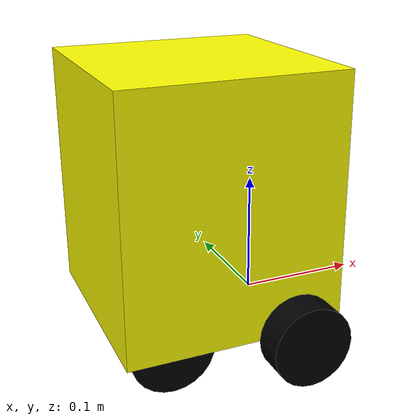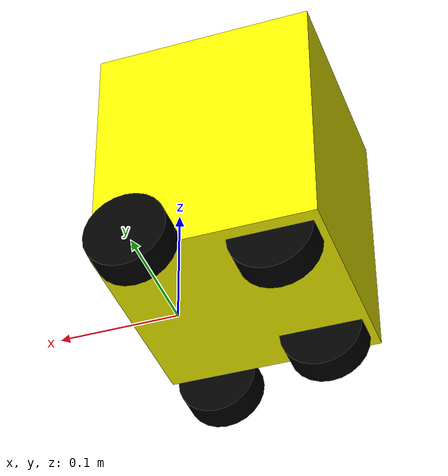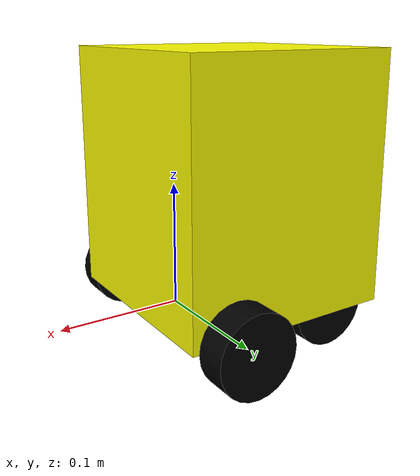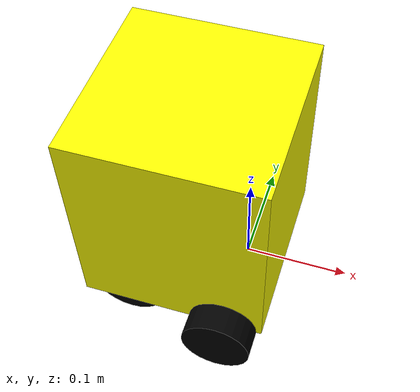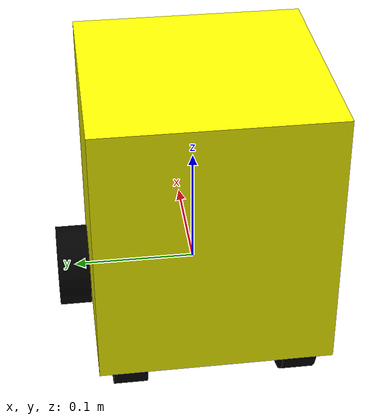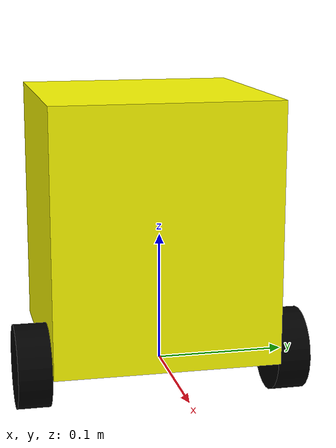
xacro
<?xml version="1.0"?>
<robot xmlns:xacro="http://www.ros.org/wiki/xacro" >

    <xacro:include filename="inertial_macros.xacro"/>

    <material name="white">
        <color rgba="1 1 1 1" />
    </material>

    <material name="orange">
        <color rgba="1 0.3 0.1 1"/>
    </material>

    <material name="blue">
        <color rgba="0.2 0.2 1 1"/>
    </material>

    <material name="black">
        <color rgba="0 0 0 1"/>
    </material>

    <material name="red">
        <color rgba="1 0 0 1"/>
    </material>

    <material name="yellow">
        <color rgba="1 1 0 1"/>
    </material>

    <!-- BASE LINK -->

    <link name="base_link">

    </link>

    <!-- CHASSIS LINK -->

    <joint name="chassis_joint" type="fixed">
        <parent link="base_link"/>
        <child link="chassis"/>
        <origin xyz="-0.14 0 0"/>
    </joint>

    <link name="chassis">
        <visual>
            <origin xyz="0.089 0 0.103"/>
            <geometry>
                <box size="0.178 0.178 0.206"/>
            </geometry>
            <material name="yellow"/>
        </visual>
        <collision>
            <origin xyz="0.089 0 0.103"/>
            <geometry>
                <box size="0.178 0.178 0.206"/>
            </geometry>
        </collision>
        <xacro:inertial_box mass="0.8" x="0.178" y="0.178" z="0.206">
            <origin xyz="0.089 0 0.103" rpy="0 0 0"/>
        </xacro:inertial_box>
    </link>

    <gazebo reference="chassis">
        <material>Gazebo/Yellow</material>
    </gazebo>

    <!-- LEFT WHEEL LINK -->

    <joint name="left_wheel_joint" type="continuous">
        <parent link="base_link"/>
        <child link="left_wheel"/>
        <origin xyz="0 0.102 0" rpy="-${pi/2} 0 0"/>
        <axis xyz="0 0 1"/>
    </joint>

    <link name="left_wheel">
        <visual>
            <geometry>
                <cylinder radius="0.033" length="0.026"/>
            </geometry>
            <material name="black"/>
        </visual>
        <collision>
            <geometry>
                <cylinder radius="0.033" length="0.026"/>
            </geometry>
        </collision>
        <xacro:inertial_cylinder mass="0.1" length="0.026" radius="0.033">
            <origin xyz="0 0 0" rpy="0 0 0"/>
        </xacro:inertial_cylinder>
    </link>

    <gazebo reference="left_wheel">
        <material>Gazebo/Black</material>
    </gazebo>

        <!-- RIGHT WHEEL LINK -->

    <joint name="right_wheel_joint" type="continuous">
        <parent link="base_link"/>
        <child link="right_wheel"/>
        <origin xyz="0 -0.102 0" rpy="${pi/2} 0 0"/>
        <axis xyz="0 0 -1"/>
    </joint>

    <link name="right_wheel">
        <visual>
            <geometry>
                <cylinder radius="0.033" length="0.026"/>
            </geometry>
            <material name="black"/>
        </visual>
        <collision>
            <geometry>
                <cylinder radius="0.033" length="0.026"/>
            </geometry>
        </collision>
        <xacro:inertial_cylinder mass="0.1" length="0.026" radius="0.033">
            <origin xyz="0 0 0" rpy="0 0 0"/>
        </xacro:inertial_cylinder>
    </link>

    <gazebo reference="right_wheel">
        <material>Gazebo/Black</material>
    </gazebo>

    <!-- LEFT CASTER WHEEL LINK -->

    <joint name="left_caster_wheel_joint" type="fixed">
        <parent link="chassis"/>
        <child link="left_caster_wheel"/>
        <origin xyz="0.04 0.065 0" rpy="${pi/2} 0 0"/>
    </joint>

    <link name="left_caster_wheel">
        <visual>
            <geometry>
                <cylinder radius="0.034" length="0.026"/>
            </geometry>
            <material name="black"/>
        </visual>
        <collision>
            <geometry>
                <cylinder radius="0.034" length="0.026"/>
            </geometry>
        </collision>
        <xacro:inertial_cylinder mass="0.1" length="0.026" radius="0.034">
            <origin xyz="0 0 0" rpy="0 0 0"/>
        </xacro:inertial_cylinder>
    </link>

    <gazebo reference="left_caster_wheel">
        <material>Gazebo/Black</material>
        <mu1 value="0.001"/>
        <mu2 value="0.001"/>
    </gazebo>

        <!-- RIGHT CASTER WHEEL LINK -->

    <joint name="right_caster_wheel_joint" type="fixed">
        <parent link="chassis"/>
        <child link="right_caster_wheel"/>
        <origin xyz="0.04 -0.065 0" rpy="${pi/2} 0 0"/>
    </joint>

    <link name="right_caster_wheel">
        <visual>
            <geometry>
                <cylinder radius="0.034" length="0.026"/>
            </geometry>
            <material name="black"/>
        </visual>
        <collision>
            <geometry>
                <cylinder radius="0.034" length="0.026"/>
            </geometry>
        </collision>
        <xacro:inertial_cylinder mass="0.1" length="0.026" radius="0.034">
            <origin xyz="0 0 0" rpy="0 0 0"/>
        </xacro:inertial_cylinder>
    </link>

    <gazebo reference="right_caster_wheel">
        <material>Gazebo/Black</material>
        <mu1 value="0.001"/>
        <mu2 value="0.001"/>
    </gazebo>

</robot>
